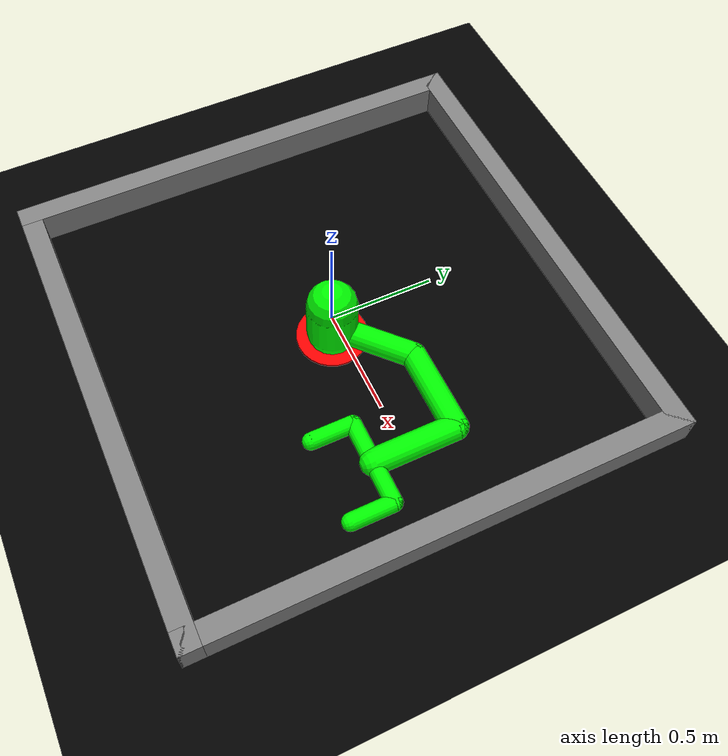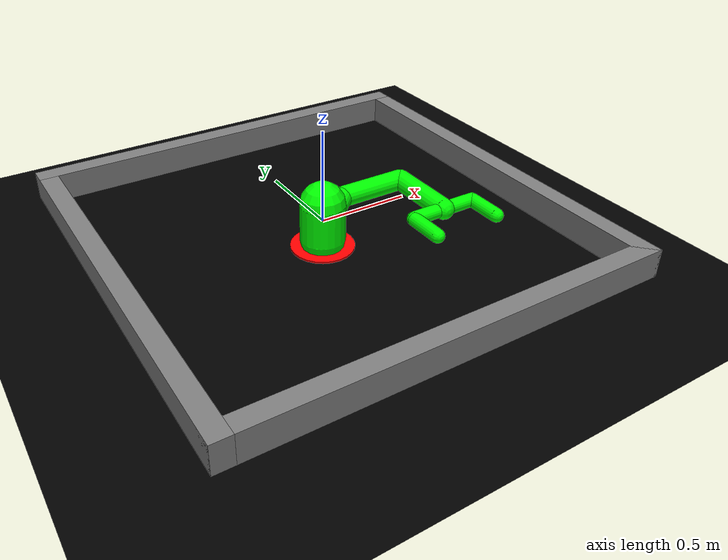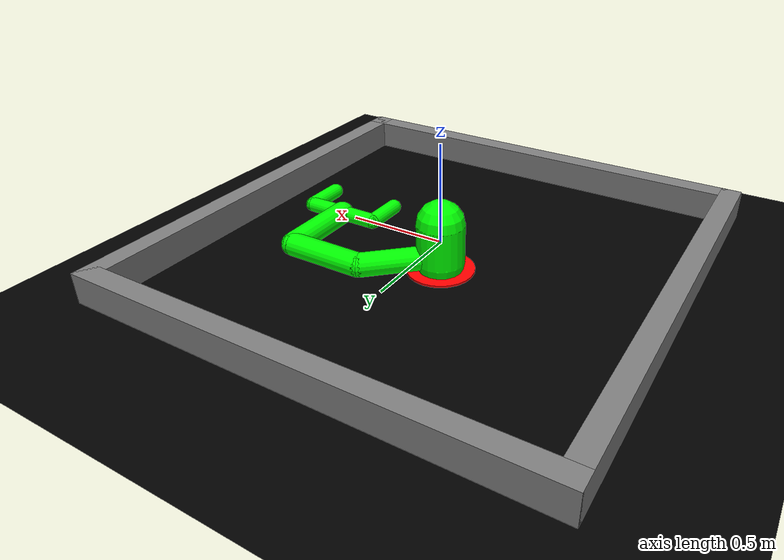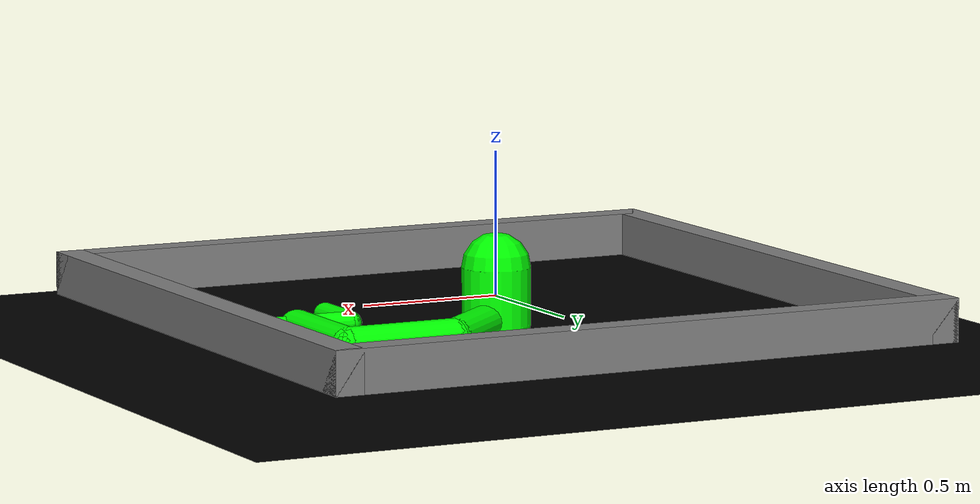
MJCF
<mujoco model="arm3d">
    <compiler inertiafromgeom="true" angle="radian" coordinate="local" />
    <custom>
        <numeric name="frame_skip" data="5" />
    </custom>
    <option timestep="0.01" gravity="0 0 0" iterations="20" integrator="Euler" />

    <asset>
      <texture name="texplane" type="2d" builtin="flat" rgb1="0 0 0" rgb2="0.8 0.8 0.8" width="5" height="5" />
      <material name='MatPlane' texture="texplane" shininess="0" texrepeat="60 60" specular="0"  reflectance="0" />
    </asset>

    <default>
        <joint armature='0.04' damping="1" limited="true"/>
        <geom friction=".8 .1 .1" density="300" margin="0.002" condim="1" contype="1" conaffinity="1"/>
    </default>

    <worldbody>
        <light diffuse=".5 .5 .5" pos="0 0 5" dir="0 0 -1"/>
        <geom name="floor" rgba="0 0 0 1" type="plane" material="MatPlane" pos="0 0.5 -0.15" size="4 4 0.1" contype="1" conaffinity="1"/>

        <body name="arena" pos="0 0 0">
          <geom rgba="0.5 0.5 0.5 1" type="box" size="1.15 0.05 0.075" pos = "0 1.1 0"/>
          <geom rgba="0.5 0.5 0.5 1" type="box" size="0.05 1.15 0.075" pos = "1.1 0 0"/>
          <geom rgba="0.5 0.5 0.5 1" type="box" size="0.05 1.15 0.075" pos = "-1.1 0 0"/>
          <geom rgba="0.5 0.5 0.5 1" type="box" size="1.15 0.05 0.075" pos = "0 -1.1 0"/>
        </body>

        <body name="palm" pos="0 0 0">
            <geom rgba="0. 1. 0. 1" type="capsule" fromto="0 0 -0.1 0 0 0.1" size="0.12"/>
            <body name="proximal_1" pos="0 0 -0.075" axisangle="0 0 1 0.75">
              <joint name="proximal_j_1" type="hinge" pos="0 0 0" axis="0 0 1" limited="false" range="-3.14 3.14" damping="1.0" />
                <geom rgba="0. 1. 0. 1" type="capsule"  fromto="0 0 0 0.4 0 0" size="0.06" contype="1" conaffinity="1"/>
                <body name="distal_1" pos="0.4 0 0" axisangle="0 0 1 -0.75">
                    <joint name="distal_j_1" type="hinge" pos="0 0 0" axis="0 0 1" range="-2.25 3.75" damping="1.0"/>
                    <geom rgba="0. 1. 0. 1" type="capsule"  fromto="0 0 0 0.4 0 0" size="0.06" contype="1" conaffinity="1"/>
                    <body name="distal_2" pos="0.4 0 0" axisangle="0 0 1 -1.57">
                        <joint name="distal_j_2" type="hinge" pos="0 0 0" axis="0 0 1" range="-1.57 4.71" damping="1.0"/>
                        <geom rgba="0. 1. 0. 1" type="capsule" fromto="0 0 0 0.4 0 0" size="0.06" contype="1" conaffinity="1"/>
                        <body name="distal_4" pos="0.4 0 0">
                            <site name="tip arml" pos="0.1 -0.2 0" size="0.01" />
                            <site name="tip armr" pos="0.1 0.2 0" size="0.01" />
                            <geom rgba="0. 1. 0. 1" type="capsule" fromto="0 -0.2 0 0 0.2 0" size="0.04" contype="1" conaffinity="1" />
                            <geom rgba="0. 1. 0. 1" type="capsule" fromto="0 -0.2 0 0.2 -0.2 0" size="0.04" contype="1" conaffinity="1" />
                            <geom rgba="0. 1. 0. 1" type="capsule" fromto="0 0.2 0 0.2 0.2 0" size="0.04" contype="1" conaffinity="1" />
                        </body>
                    </body>
                </body>
            </body>
        </body>

        <body name="object" pos="0 0 -0.1">
            <geom rgba="1. 1. 1. 1" type="cylinder" size="0.1 0.1 0.1" density='0.00001' contype="1" conaffinity="1"/>
            <joint name="obj_slidex" type="slide" pos="0.025 0.025 0.025" axis="1 0 0" range="-1 1" damping="0.5"/>
            <joint name="obj_slidey" type="slide" pos="0.025 0.025 0.025" axis="0 1 0" range="-1 1" damping="0.5"/>
        </body>

        <body name="goal" pos="0 0 -0.145">
            <geom rgba="1. 0. 0. 1" type="cylinder" size="0.17 0.005 0.2" density='0.00001' contype="0" conaffinity="0"/>
            <joint name="goal_slidex" type="slide" pos="0 0 0" axis="1 0 0" range="-10.3213 10.3" damping="0.5"/>
            <joint name="goal_slidey" type="slide" pos="0 0 0" axis="0 1 0" range="-10.3213 10.3" damping="0.5"/>
        </body>

    </worldbody>

    <actuator>
        <position joint="proximal_j_1" ctrlrange="-3.14 3.14" ctrllimited="false" kp="0.5"/>
        <position joint="distal_j_1" ctrlrange="-2.25 3.75" ctrllimited="true" kp="0.5"/>
        <position joint="distal_j_2" ctrlrange="-1.57 4.71" ctrllimited="true" kp="0.5"/>
    </actuator>
</mujoco>
